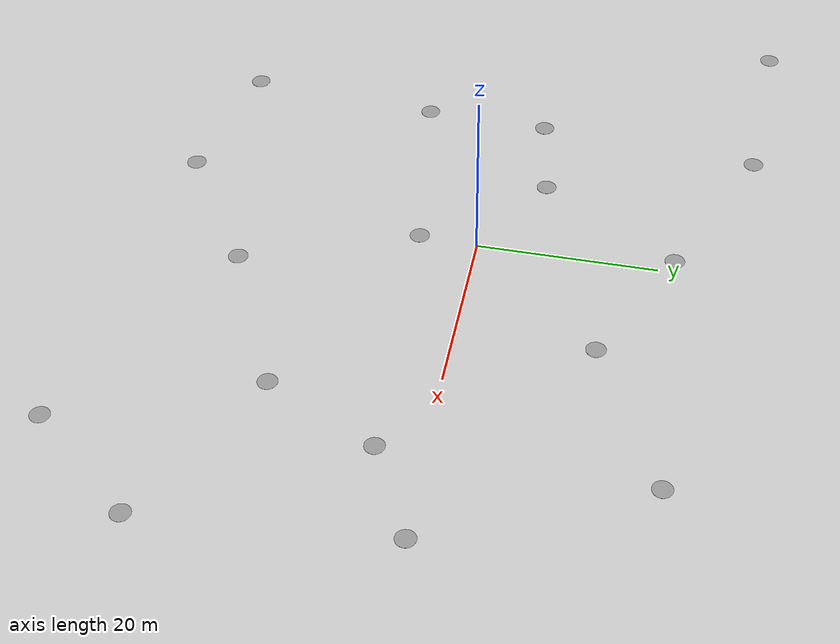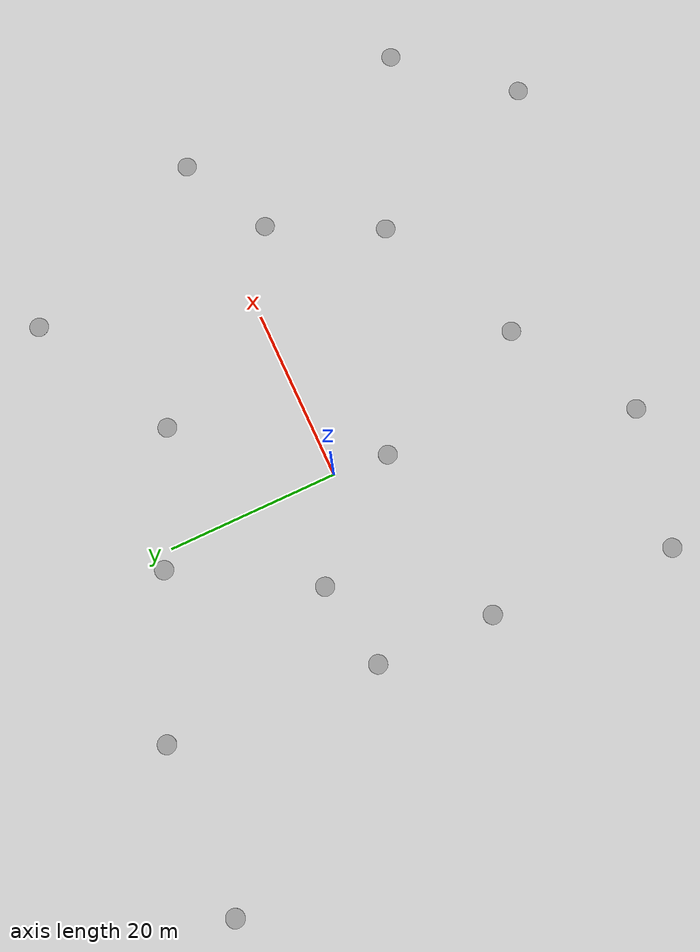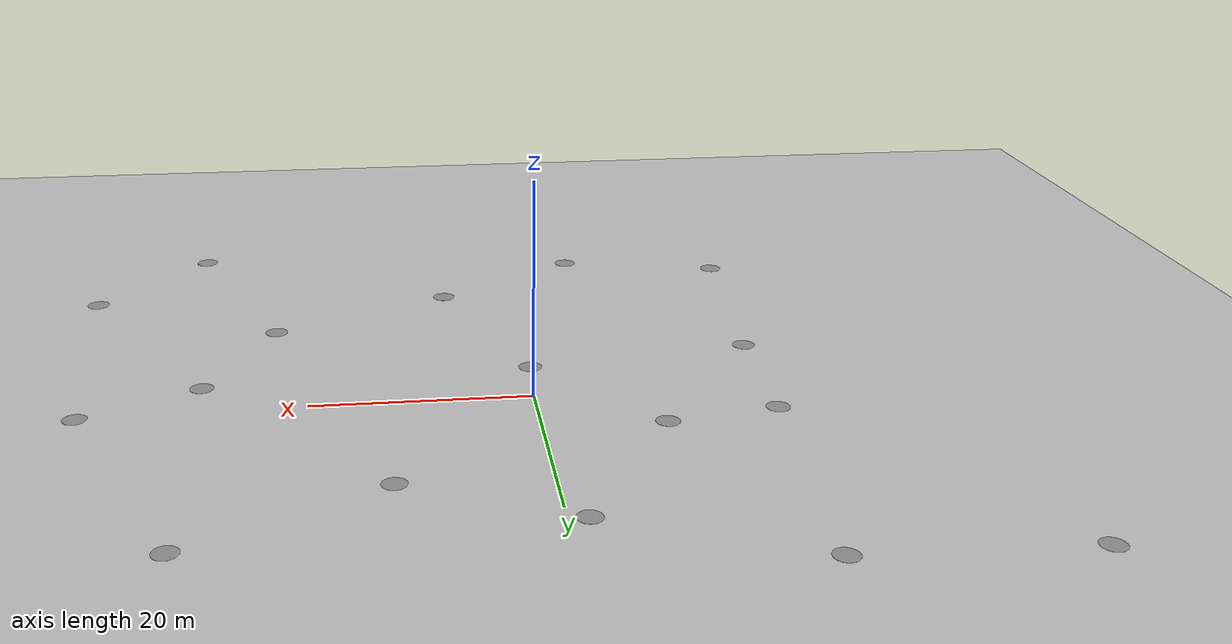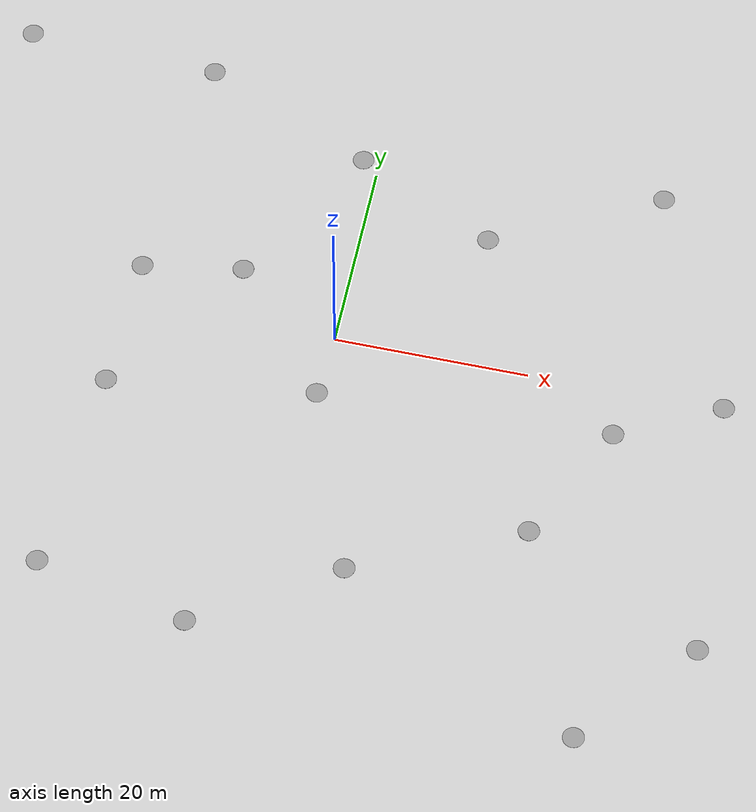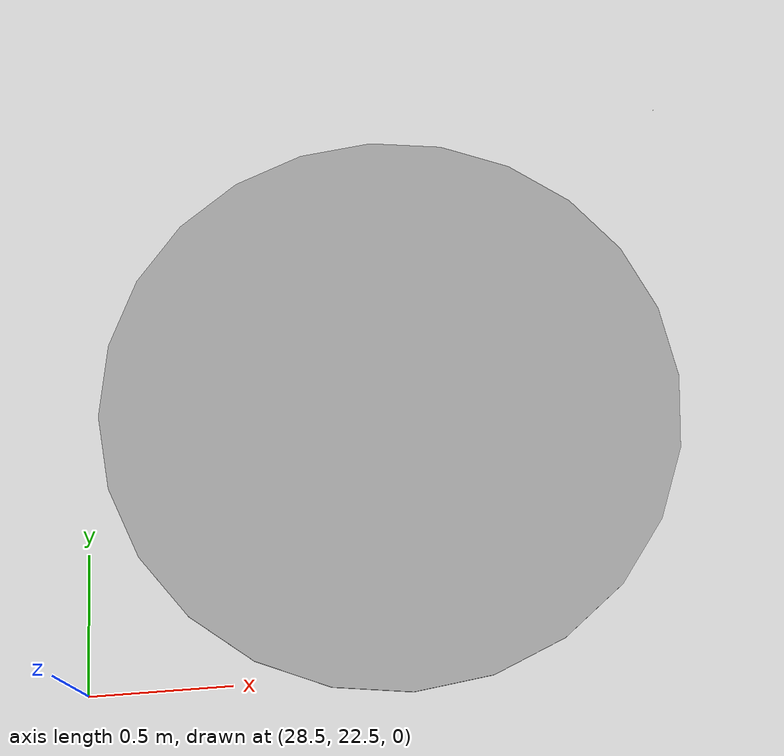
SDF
<sdf version="1.7">
 <world name="default">
  <light name="sun" type="directional">
   <pose>0 0 10 0 -0 0</pose>
   <diffuse>0.8 0.8 0.8 1</diffuse>
   <specular>0.2 0.2 0.2 1</specular>
   <attenuation>
    <range>1000</range>
    <constant>0.9</constant>
    <linear>0.01</linear>
    <quadratic>0.001</quadratic>
   </attenuation>
   <direction>-0.5 0.1 -0.9</direction>
   <spot><inner_angle>0</inner_angle><outer_angle>0</outer_angle><falloff>0</falloff></spot>
  </light>
  <gravity>0 0 -9.8</gravity>
  <magnetic_field>6e-06 2.3e-05 -4.2e-05</magnetic_field>
  <atmosphere type="adiabatic"/>
  <physics type="ode">
   <max_step_size>0.001</max_step_size>
   <real_time_factor>1</real_time_factor>
   <real_time_update_rate>1000</real_time_update_rate>
  </physics>
  <scene><ambient>0.4 0.4 0.4 1</ambient><background>0.7 0.7 0.7 1</background><shadows>1</shadows></scene>
  <spherical_coordinates>
   <surface_model>EARTH_WGS84</surface_model>
   <latitude_deg>0</latitude_deg>
   <longitude_deg>0</longitude_deg>
   <elevation>0</elevation>
   <heading_deg>0</heading_deg>
  </spherical_coordinates>
  <model name="greenplane">
   <static>1</static>
   <link name="link">
    <collision name="collision">
     <geometry><plane><normal>0 0 1</normal><size>100 100</size></plane></geometry>
     <surface><friction><ode><mu>100</mu><mu2>50</mu2></ode></friction></surface>
    </collision>
    <visual name="visual">
     <cast_shadows>0</cast_shadows>
     <geometry><plane><normal>0 0 1</normal><size>100 100</size></plane></geometry>
     <material>
      <script>
       <uri>/home/tamoghna/catkin_ws/src/vikram/models/green_plane/materials/scripts</uri>
       <uri>/home/tamoghna/catkin_ws/src/vikram/models/green_plane/materials/textures</uri>
       <name>MyModel/Image</name>
      </script>
     </material>
    </visual>
   </link>
  </model>
  <model name="pothole">
   <link name="link_0">
    <inertial>
     <mass>4.78965</mass>
     <inertia><ixx>1.43387</ixx><ixy>0</ixy><ixz>0</ixz><iyy>1.43387</iyy><iyz>0</iyz><izz>2.86765</izz></inertia>
    </inertial>
    <visual name="visual">
     <geometry><cylinder><radius>1.09427</radius><length>0.01</length></cylinder></geometry>
     <material>
      <lighting>1</lighting>
      <script><uri>file://media/materials/scripts/gazebo.material</uri><name>Gazebo/Grey</name></script>
      <shader type="pixel"><normal_map>__default__</normal_map></shader>
      <ambient>1 1 1 1</ambient>
      <diffuse>1 1 1 1</diffuse>
      <specular>1 1 1 1</specular>
      <emissive>1 1 1 1</emissive>
     </material>
    </visual>
    <collision name="collision">
     <geometry><cylinder><radius>1.09427</radius><length>0.01</length></cylinder></geometry>
     <surface>
      <friction>
       <ode><mu>1</mu><mu2>1</mu2><fdir1>0 0 0</fdir1><slip1>0</slip1><slip2>0</slip2></ode>
       <torsional>
        <coefficient>1</coefficient>
        <patch_radius>0</patch_radius>
        <surface_radius>0</surface_radius>
        <use_patch_radius>1</use_patch_radius>
        <ode><slip>0</slip></ode>
       </torsional>
      </friction>
      <bounce><restitution_coefficient>0</restitution_coefficient><threshold>1e+06</threshold></bounce>
      <contact>
       <collide_without_contact>0</collide_without_contact>
       <collide_without_contact_bitmask>1</collide_without_contact_bitmask>
       <collide_bitmask>1</collide_bitmask>
       <ode>
        <soft_cfm>0</soft_cfm>
        <soft_erp>0.2</soft_erp>
        <kp>1e+13</kp>
        <kd>1</kd>
        <max_vel>0.01</max_vel>
        <min_depth>0</min_depth>
       </ode>
       <bullet>
        <split_impulse>1</split_impulse>
        <split_impulse_penetration_threshold>-0.01</split_impulse_penetration_threshold>
        <soft_cfm>0</soft_cfm>
        <soft_erp>0.2</soft_erp>
        <kp>1e+13</kp>
        <kd>1</kd>
       </bullet>
      </contact>
     </surface>
    </collision>
   </link>
   <static>0</static>
   <pose>-0.450795 -6.48247 0.005 0 -0 0</pose>
  </model>
  <model name="pothole_clone">
   <link name="link_0">
    <inertial>
     <mass>4.78965</mass>
     <inertia><ixx>1.43387</ixx><ixy>0</ixy><ixz>0</ixz><iyy>1.43387</iyy><iyz>0</iyz><izz>2.86765</izz></inertia>
    </inertial>
    <visual name="visual">
     <geometry><cylinder><radius>1.09427</radius><length>0.01</length></cylinder></geometry>
     <material>
      <lighting>1</lighting>
      <script><uri>file://media/materials/scripts/gazebo.material</uri><name>Gazebo/Grey</name></script>
      <shader type="pixel"><normal_map>__default__</normal_map></shader>
      <ambient>1 1 1 1</ambient>
      <diffuse>1 1 1 1</diffuse>
      <specular>1 1 1 1</specular>
      <emissive>1 1 1 1</emissive>
     </material>
    </visual>
    <collision name="collision">
     <geometry><cylinder><radius>1.09427</radius><length>0.01</length></cylinder></geometry>
     <surface>
      <friction>
       <ode><mu>1</mu><mu2>1</mu2><fdir1>0 0 0</fdir1><slip1>0</slip1><slip2>0</slip2></ode>
       <torsional>
        <coefficient>1</coefficient>
        <patch_radius>0</patch_radius>
        <surface_radius>0</surface_radius>
        <use_patch_radius>1</use_patch_radius>
        <ode><slip>0</slip></ode>
       </torsional>
      </friction>
      <bounce><restitution_coefficient>0</restitution_coefficient><threshold>1e+06</threshold></bounce>
      <contact>
       <collide_without_contact>0</collide_without_contact>
       <collide_without_contact_bitmask>1</collide_without_contact_bitmask>
       <collide_bitmask>1</collide_bitmask>
       <ode>
        <soft_cfm>0</soft_cfm>
        <soft_erp>0.2</soft_erp>
        <kp>1e+13</kp>
        <kd>1</kd>
        <max_vel>0.01</max_vel>
        <min_depth>0</min_depth>
       </ode>
       <bullet>
        <split_impulse>1</split_impulse>
        <split_impulse_penetration_threshold>-0.01</split_impulse_penetration_threshold>
        <soft_cfm>0</soft_cfm>
        <soft_erp>0.2</soft_erp>
        <kp>1e+13</kp>
        <kd>1</kd>
       </bullet>
      </contact>
     </surface>
    </collision>
   </link>
   <static>0</static>
   <pose>-10.9635 6.12866 0.005 0 -0 0</pose>
  </model>
  <model name="pothole_clone_0">
   <link name="link_0">
    <inertial>
     <mass>4.78965</mass>
     <inertia><ixx>1.43387</ixx><ixy>0</ixy><ixz>0</ixz><iyy>1.43387</iyy><iyz>0</iyz><izz>2.86765</izz></inertia>
    </inertial>
    <visual name="visual">
     <geometry><cylinder><radius>1.09427</radius><length>0.01</length></cylinder></geometry>
     <material>
      <lighting>1</lighting>
      <script><uri>file://media/materials/scripts/gazebo.material</uri><name>Gazebo/Grey</name></script>
      <shader type="pixel"><normal_map>__default__</normal_map></shader>
      <ambient>1 1 1 1</ambient>
      <diffuse>1 1 1 1</diffuse>
      <specular>1 1 1 1</specular>
      <emissive>1 1 1 1</emissive>
     </material>
    </visual>
    <collision name="collision">
     <geometry><cylinder><radius>1.09427</radius><length>0.01</length></cylinder></geometry>
     <surface>
      <friction>
       <ode><mu>1</mu><mu2>1</mu2><fdir1>0 0 0</fdir1><slip1>0</slip1><slip2>0</slip2></ode>
       <torsional>
        <coefficient>1</coefficient>
        <patch_radius>0</patch_radius>
        <surface_radius>0</surface_radius>
        <use_patch_radius>1</use_patch_radius>
        <ode><slip>0</slip></ode>
       </torsional>
      </friction>
      <bounce><restitution_coefficient>0</restitution_coefficient><threshold>1e+06</threshold></bounce>
      <contact>
       <collide_without_contact>0</collide_without_contact>
       <collide_without_contact_bitmask>1</collide_without_contact_bitmask>
       <collide_bitmask>1</collide_bitmask>
       <ode>
        <soft_cfm>0</soft_cfm>
        <soft_erp>0.2</soft_erp>
        <kp>1e+13</kp>
        <kd>1</kd>
        <max_vel>0.01</max_vel>
        <min_depth>0</min_depth>
       </ode>
       <bullet>
        <split_impulse>1</split_impulse>
        <split_impulse_penetration_threshold>-0.01</split_impulse_penetration_threshold>
        <soft_cfm>0</soft_cfm>
        <soft_erp>0.2</soft_erp>
        <kp>1e+13</kp>
        <kd>1</kd>
       </bullet>
      </contact>
     </surface>
    </collision>
   </link>
   <static>0</static>
   <pose>12.8185 14.8872 0.005 0 -0 0</pose>
  </model>
  <model name="pothole_clone_1">
   <link name="link_0">
    <inertial>
     <mass>4.78965</mass>
     <inertia><ixx>1.43387</ixx><ixy>0</ixy><ixz>0</ixz><iyy>1.43387</iyy><iyz>0</iyz><izz>2.86765</izz></inertia>
    </inertial>
    <visual name="visual">
     <geometry><cylinder><radius>1.09427</radius><length>0.01</length></cylinder></geometry>
     <material>
      <lighting>1</lighting>
      <script><uri>file://media/materials/scripts/gazebo.material</uri><name>Gazebo/Grey</name></script>
      <shader type="pixel"><normal_map>__default__</normal_map></shader>
      <ambient>1 1 1 1</ambient>
      <diffuse>1 1 1 1</diffuse>
      <specular>1 1 1 1</specular>
      <emissive>1 1 1 1</emissive>
     </material>
    </visual>
    <collision name="collision">
     <geometry><cylinder><radius>1.09427</radius><length>0.01</length></cylinder></geometry>
     <surface>
      <friction>
       <ode><mu>1</mu><mu2>1</mu2><fdir1>0 0 0</fdir1><slip1>0</slip1><slip2>0</slip2></ode>
       <torsional>
        <coefficient>1</coefficient>
        <patch_radius>0</patch_radius>
        <surface_radius>0</surface_radius>
        <use_patch_radius>1</use_patch_radius>
        <ode><slip>0</slip></ode>
       </torsional>
      </friction>
      <bounce><restitution_coefficient>0</restitution_coefficient><threshold>1e+06</threshold></bounce>
      <contact>
       <collide_without_contact>0</collide_without_contact>
       <collide_without_contact_bitmask>1</collide_without_contact_bitmask>
       <collide_bitmask>1</collide_bitmask>
       <ode>
        <soft_cfm>0</soft_cfm>
        <soft_erp>0.2</soft_erp>
        <kp>1e+13</kp>
        <kd>1</kd>
        <max_vel>0.01</max_vel>
        <min_depth>0</min_depth>
       </ode>
       <bullet>
        <split_impulse>1</split_impulse>
        <split_impulse_penetration_threshold>-0.01</split_impulse_penetration_threshold>
        <soft_cfm>0</soft_cfm>
        <soft_erp>0.2</soft_erp>
        <kp>1e+13</kp>
        <kd>1</kd>
       </bullet>
      </contact>
     </surface>
    </collision>
   </link>
   <static>0</static>
   <pose>-21.6093 -9.48091 0.005 0 -0 0</pose>
  </model>
  <model name="pothole_clone_2">
   <link name="link_0">
    <inertial>
     <mass>4.78965</mass>
     <inertia><ixx>1.43387</ixx><ixy>0</ixy><ixz>0</ixz><iyy>1.43387</iyy><iyz>0</iyz><izz>2.86765</izz></inertia>
    </inertial>
    <visual name="visual">
     <geometry><cylinder><radius>1.09427</radius><length>0.01</length></cylinder></geometry>
     <material>
      <lighting>1</lighting>
      <script><uri>file://media/materials/scripts/gazebo.material</uri><name>Gazebo/Grey</name></script>
      <shader type="pixel"><normal_map>__default__</normal_map></shader>
      <ambient>1 1 1 1</ambient>
      <diffuse>1 1 1 1</diffuse>
      <specular>1 1 1 1</specular>
      <emissive>1 1 1 1</emissive>
     </material>
    </visual>
    <collision name="collision">
     <geometry><cylinder><radius>1.09427</radius><length>0.01</length></cylinder></geometry>
     <surface>
      <friction>
       <ode><mu>1</mu><mu2>1</mu2><fdir1>0 0 0</fdir1><slip1>0</slip1><slip2>0</slip2></ode>
       <torsional>
        <coefficient>1</coefficient>
        <patch_radius>0</patch_radius>
        <surface_radius>0</surface_radius>
        <use_patch_radius>1</use_patch_radius>
        <ode><slip>0</slip></ode>
       </torsional>
      </friction>
      <bounce><restitution_coefficient>0</restitution_coefficient><threshold>1e+06</threshold></bounce>
      <contact>
       <collide_without_contact>0</collide_without_contact>
       <collide_without_contact_bitmask>1</collide_without_contact_bitmask>
       <collide_bitmask>1</collide_bitmask>
       <ode>
        <soft_cfm>0</soft_cfm>
        <soft_erp>0.2</soft_erp>
        <kp>1e+13</kp>
        <kd>1</kd>
        <max_vel>0.01</max_vel>
        <min_depth>0</min_depth>
       </ode>
       <bullet>
        <split_impulse>1</split_impulse>
        <split_impulse_penetration_threshold>-0.01</split_impulse_penetration_threshold>
        <soft_cfm>0</soft_cfm>
        <soft_erp>0.2</soft_erp>
        <kp>1e+13</kp>
        <kd>1</kd>
       </bullet>
      </contact>
     </surface>
    </collision>
   </link>
   <static>0</static>
   <pose>6.53571 -25.3494 0.005 0 -0 0</pose>
  </model>
  <model name="pothole_clone_3">
   <link name="link_0">
    <inertial>
     <mass>4.78965</mass>
     <inertia><ixx>1.43387</ixx><ixy>0</ixy><ixz>0</ixz><iyy>1.43387</iyy><iyz>0</iyz><izz>2.86765</izz></inertia>
    </inertial>
    <visual name="visual">
     <geometry><cylinder><radius>1.09427</radius><length>0.01</length></cylinder></geometry>
     <material>
      <lighting>1</lighting>
      <script><uri>file://media/materials/scripts/gazebo.material</uri><name>Gazebo/Grey</name></script>
      <shader type="pixel"><normal_map>__default__</normal_map></shader>
      <ambient>1 1 1 1</ambient>
      <diffuse>1 1 1 1</diffuse>
      <specular>1 1 1 1</specular>
      <emissive>1 1 1 1</emissive>
     </material>
    </visual>
    <collision name="collision">
     <geometry><cylinder><radius>1.09427</radius><length>0.01</length></cylinder></geometry>
     <surface>
      <friction>
       <ode><mu>1</mu><mu2>1</mu2><fdir1>0 0 0</fdir1><slip1>0</slip1><slip2>0</slip2></ode>
       <torsional>
        <coefficient>1</coefficient>
        <patch_radius>0</patch_radius>
        <surface_radius>0</surface_radius>
        <use_patch_radius>1</use_patch_radius>
        <ode><slip>0</slip></ode>
       </torsional>
      </friction>
      <bounce><restitution_coefficient>0</restitution_coefficient><threshold>1e+06</threshold></bounce>
      <contact>
       <collide_without_contact>0</collide_without_contact>
       <collide_without_contact_bitmask>1</collide_without_contact_bitmask>
       <collide_bitmask>1</collide_bitmask>
       <ode>
        <soft_cfm>0</soft_cfm>
        <soft_erp>0.2</soft_erp>
        <kp>1e+13</kp>
        <kd>1</kd>
        <max_vel>0.01</max_vel>
        <min_depth>0</min_depth>
       </ode>
       <bullet>
        <split_impulse>1</split_impulse>
        <split_impulse_penetration_threshold>-0.01</split_impulse_penetration_threshold>
        <soft_cfm>0</soft_cfm>
        <soft_erp>0.2</soft_erp>
        <kp>1e+13</kp>
        <kd>1</kd>
       </bullet>
      </contact>
     </surface>
    </collision>
   </link>
   <static>0</static>
   <pose>-21.1845 4.36156 0.005 0 -0 0</pose>
  </model>
  <model name="pothole_clone_4">
   <link name="link_0">
    <inertial>
     <mass>4.78965</mass>
     <inertia><ixx>1.43387</ixx><ixy>0</ixy><ixz>0</ixz><iyy>1.43387</iyy><iyz>0</iyz><izz>2.86765</izz></inertia>
    </inertial>
    <visual name="visual">
     <geometry><cylinder><radius>1.09427</radius><length>0.01</length></cylinder></geometry>
     <material>
      <lighting>1</lighting>
      <script><uri>file://media/materials/scripts/gazebo.material</uri><name>Gazebo/Grey</name></script>
      <shader type="pixel"><normal_map>__default__</normal_map></shader>
      <ambient>1 1 1 1</ambient>
      <diffuse>1 1 1 1</diffuse>
      <specular>1 1 1 1</specular>
      <emissive>1 1 1 1</emissive>
     </material>
    </visual>
    <collision name="collision">
     <geometry><cylinder><radius>1.09427</radius><length>0.01</length></cylinder></geometry>
     <surface>
      <friction>
       <ode><mu>1</mu><mu2>1</mu2><fdir1>0 0 0</fdir1><slip1>0</slip1><slip2>0</slip2></ode>
       <torsional>
        <coefficient>1</coefficient>
        <patch_radius>0</patch_radius>
        <surface_radius>0</surface_radius>
        <use_patch_radius>1</use_patch_radius>
        <ode><slip>0</slip></ode>
       </torsional>
      </friction>
      <bounce><restitution_coefficient>0</restitution_coefficient><threshold>1e+06</threshold></bounce>
      <contact>
       <collide_without_contact>0</collide_without_contact>
       <collide_without_contact_bitmask>1</collide_without_contact_bitmask>
       <collide_bitmask>1</collide_bitmask>
       <ode>
        <soft_cfm>0</soft_cfm>
        <soft_erp>0.2</soft_erp>
        <kp>1e+13</kp>
        <kd>1</kd>
        <max_vel>0.01</max_vel>
        <min_depth>0</min_depth>
       </ode>
       <bullet>
        <split_impulse>1</split_impulse>
        <split_impulse_penetration_threshold>-0.01</split_impulse_penetration_threshold>
        <soft_cfm>0</soft_cfm>
        <soft_erp>0.2</soft_erp>
        <kp>1e+13</kp>
        <kd>1</kd>
       </bullet>
      </contact>
     </surface>
    </collision>
   </link>
   <static>0</static>
   <pose>23.5458 -17.4169 0.005 0 -0 0</pose>
  </model>
  <model name="pothole_clone_5">
   <link name="link_0">
    <inertial>
     <mass>4.78965</mass>
     <inertia><ixx>1.43387</ixx><ixy>0</ixy><ixz>0</ixz><iyy>1.43387</iyy><iyz>0</iyz><izz>2.86765</izz></inertia>
    </inertial>
    <visual name="visual">
     <geometry><cylinder><radius>1.09427</radius><length>0.01</length></cylinder></geometry>
     <material>
      <lighting>1</lighting>
      <script><uri>file://media/materials/scripts/gazebo.material</uri><name>Gazebo/Grey</name></script>
      <shader type="pixel"><normal_map>__default__</normal_map></shader>
      <ambient>1 1 1 1</ambient>
      <diffuse>1 1 1 1</diffuse>
      <specular>1 1 1 1</specular>
      <emissive>1 1 1 1</emissive>
     </material>
    </visual>
    <collision name="collision">
     <geometry><cylinder><radius>1.09427</radius><length>0.01</length></cylinder></geometry>
     <surface>
      <friction>
       <ode><mu>1</mu><mu2>1</mu2><fdir1>0 0 0</fdir1><slip1>0</slip1><slip2>0</slip2></ode>
       <torsional>
        <coefficient>1</coefficient>
        <patch_radius>0</patch_radius>
        <surface_radius>0</surface_radius>
        <use_patch_radius>1</use_patch_radius>
        <ode><slip>0</slip></ode>
       </torsional>
      </friction>
      <bounce><restitution_coefficient>0</restitution_coefficient><threshold>1e+06</threshold></bounce>
      <contact>
       <collide_without_contact>0</collide_without_contact>
       <collide_without_contact_bitmask>1</collide_without_contact_bitmask>
       <collide_bitmask>1</collide_bitmask>
       <ode>
        <soft_cfm>0</soft_cfm>
        <soft_erp>0.2</soft_erp>
        <kp>1e+13</kp>
        <kd>1</kd>
        <max_vel>0.01</max_vel>
        <min_depth>0</min_depth>
       </ode>
       <bullet>
        <split_impulse>1</split_impulse>
        <split_impulse_penetration_threshold>-0.01</split_impulse_penetration_threshold>
        <soft_cfm>0</soft_cfm>
        <soft_erp>0.2</soft_erp>
        <kp>1e+13</kp>
        <kd>1</kd>
       </bullet>
      </contact>
     </surface>
    </collision>
   </link>
   <static>0</static>
   <pose>-23.3218 -30.9269 0.005 0 -0 0</pose>
  </model>
  <model name="pothole_clone_6">
   <link name="link_0">
    <inertial>
     <mass>4.78965</mass>
     <inertia><ixx>1.43387</ixx><ixy>0</ixy><ixz>0</ixz><iyy>1.43387</iyy><iyz>0</iyz><izz>2.86765</izz></inertia>
    </inertial>
    <visual name="visual">
     <geometry><cylinder><radius>1.09427</radius><length>0.01</length></cylinder></geometry>
     <material>
      <lighting>1</lighting>
      <script><uri>file://media/materials/scripts/gazebo.material</uri><name>Gazebo/Grey</name></script>
      <shader type="pixel"><normal_map>__default__</normal_map></shader>
      <ambient>1 1 1 1</ambient>
      <diffuse>1 1 1 1</diffuse>
      <specular>1 1 1 1</specular>
      <emissive>1 1 1 1</emissive>
     </material>
    </visual>
    <collision name="collision">
     <geometry><cylinder><radius>1.09427</radius><length>0.01</length></cylinder></geometry>
     <surface>
      <friction>
       <ode><mu>1</mu><mu2>1</mu2><fdir1>0 0 0</fdir1><slip1>0</slip1><slip2>0</slip2></ode>
       <torsional>
        <coefficient>1</coefficient>
        <patch_radius>0</patch_radius>
        <surface_radius>0</surface_radius>
        <use_patch_radius>1</use_patch_radius>
        <ode><slip>0</slip></ode>
       </torsional>
      </friction>
      <bounce><restitution_coefficient>0</restitution_coefficient><threshold>1e+06</threshold></bounce>
      <contact>
       <collide_without_contact>0</collide_without_contact>
       <collide_without_contact_bitmask>1</collide_without_contact_bitmask>
       <collide_bitmask>1</collide_bitmask>
       <ode>
        <soft_cfm>0</soft_cfm>
        <soft_erp>0.2</soft_erp>
        <kp>1e+13</kp>
        <kd>1</kd>
        <max_vel>0.01</max_vel>
        <min_depth>0</min_depth>
       </ode>
       <bullet>
        <split_impulse>1</split_impulse>
        <split_impulse_penetration_threshold>-0.01</split_impulse_penetration_threshold>
        <soft_cfm>0</soft_cfm>
        <soft_erp>0.2</soft_erp>
        <kp>1e+13</kp>
        <kd>1</kd>
       </bullet>
      </contact>
     </surface>
    </collision>
   </link>
   <static>0</static>
   <pose>-7.52985 -34.3069 0.005 0 -0 0</pose>
  </model>
  <model name="pothole_clone_7">
   <link name="link_0">
    <inertial>
     <mass>4.78965</mass>
     <inertia><ixx>1.43387</ixx><ixy>0</ixy><ixz>0</ixz><iyy>1.43387</iyy><iyz>0</iyz><izz>2.86765</izz></inertia>
    </inertial>
    <visual name="visual">
     <geometry><cylinder><radius>1.09427</radius><length>0.01</length></cylinder></geometry>
     <material>
      <lighting>1</lighting>
      <script><uri>file://media/materials/scripts/gazebo.material</uri><name>Gazebo/Grey</name></script>
      <shader type="pixel"><normal_map>__default__</normal_map></shader>
      <ambient>1 1 1 1</ambient>
      <diffuse>1 1 1 1</diffuse>
      <specular>1 1 1 1</specular>
      <emissive>1 1 1 1</emissive>
     </material>
    </visual>
    <collision name="collision">
     <geometry><cylinder><radius>1.09427</radius><length>0.01</length></cylinder></geometry>
     <surface>
      <friction>
       <ode><mu>1</mu><mu2>1</mu2><fdir1>0 0 0</fdir1><slip1>0</slip1><slip2>0</slip2></ode>
       <torsional>
        <coefficient>1</coefficient>
        <patch_radius>0</patch_radius>
        <surface_radius>0</surface_radius>
        <use_patch_radius>1</use_patch_radius>
        <ode><slip>0</slip></ode>
       </torsional>
      </friction>
      <bounce><restitution_coefficient>0</restitution_coefficient><threshold>1e+06</threshold></bounce>
      <contact>
       <collide_without_contact>0</collide_without_contact>
       <collide_without_contact_bitmask>1</collide_without_contact_bitmask>
       <collide_bitmask>1</collide_bitmask>
       <ode>
        <soft_cfm>0</soft_cfm>
        <soft_erp>0.2</soft_erp>
        <kp>1e+13</kp>
        <kd>1</kd>
        <max_vel>0.01</max_vel>
        <min_depth>0</min_depth>
       </ode>
       <bullet>
        <split_impulse>1</split_impulse>
        <split_impulse_penetration_threshold>-0.01</split_impulse_penetration_threshold>
        <soft_cfm>0</soft_cfm>
        <soft_erp>0.2</soft_erp>
        <kp>1e+13</kp>
        <kd>1</kd>
       </bullet>
      </contact>
     </surface>
    </collision>
   </link>
   <static>0</static>
   <pose>-19.3615 29.0423 0.005 0 -0 0</pose>
  </model>
  <model name="pothole_clone_8">
   <link name="link_0">
    <inertial>
     <mass>4.78965</mass>
     <inertia><ixx>1.43387</ixx><ixy>0</ixy><ixz>0</ixz><iyy>1.43387</iyy><iyz>0</iyz><izz>2.86765</izz></inertia>
    </inertial>
    <visual name="visual">
     <geometry><cylinder><radius>1.09427</radius><length>0.01</length></cylinder></geometry>
     <material>
      <lighting>1</lighting>
      <script><uri>file://media/materials/scripts/gazebo.material</uri><name>Gazebo/Grey</name></script>
      <shader type="pixel"><normal_map>__default__</normal_map></shader>
      <ambient>1 1 1 1</ambient>
      <diffuse>1 1 1 1</diffuse>
      <specular>1 1 1 1</specular>
      <emissive>1 1 1 1</emissive>
     </material>
    </visual>
    <collision name="collision">
     <geometry><cylinder><radius>1.09427</radius><length>0.01</length></cylinder></geometry>
     <surface>
      <friction>
       <ode><mu>1</mu><mu2>1</mu2><fdir1>0 0 0</fdir1><slip1>0</slip1><slip2>0</slip2></ode>
       <torsional>
        <coefficient>1</coefficient>
        <patch_radius>0</patch_radius>
        <surface_radius>0</surface_radius>
        <use_patch_radius>1</use_patch_radius>
        <ode><slip>0</slip></ode>
       </torsional>
      </friction>
      <bounce><restitution_coefficient>0</restitution_coefficient><threshold>1e+06</threshold></bounce>
      <contact>
       <collide_without_contact>0</collide_without_contact>
       <collide_without_contact_bitmask>1</collide_without_contact_bitmask>
       <collide_bitmask>1</collide_bitmask>
       <ode>
        <soft_cfm>0</soft_cfm>
        <soft_erp>0.2</soft_erp>
        <kp>1e+13</kp>
        <kd>1</kd>
        <max_vel>0.01</max_vel>
        <min_depth>0</min_depth>
       </ode>
       <bullet>
        <split_impulse>1</split_impulse>
        <split_impulse_penetration_threshold>-0.01</split_impulse_penetration_threshold>
        <soft_cfm>0</soft_cfm>
        <soft_erp>0.2</soft_erp>
        <kp>1e+13</kp>
        <kd>1</kd>
       </bullet>
      </contact>
     </surface>
    </collision>
   </link>
   <static>0</static>
   <pose>29.6658 -4.85936 0.005 0 -0 0</pose>
  </model>
  <model name="pothole_clone_9">
   <link name="link_0">
    <inertial>
     <mass>4.78965</mass>
     <inertia><ixx>1.43387</ixx><ixy>0</ixy><ixz>0</ixz><iyy>1.43387</iyy><iyz>0</iyz><izz>2.86765</izz></inertia>
    </inertial>
    <visual name="visual">
     <geometry><cylinder><radius>1.09427</radius><length>0.01</length></cylinder></geometry>
     <material>
      <lighting>1</lighting>
      <script><uri>file://media/materials/scripts/gazebo.material</uri><name>Gazebo/Grey</name></script>
      <shader type="pixel"><normal_map>__default__</normal_map></shader>
      <ambient>1 1 1 1</ambient>
      <diffuse>1 1 1 1</diffuse>
      <specular>1 1 1 1</specular>
      <emissive>1 1 1 1</emissive>
     </material>
    </visual>
    <collision name="collision">
     <geometry><cylinder><radius>1.09427</radius><length>0.01</length></cylinder></geometry>
     <surface>
      <friction>
       <ode><mu>1</mu><mu2>1</mu2><fdir1>0 0 0</fdir1><slip1>0</slip1><slip2>0</slip2></ode>
       <torsional>
        <coefficient>1</coefficient>
        <patch_radius>0</patch_radius>
        <surface_radius>0</surface_radius>
        <use_patch_radius>1</use_patch_radius>
        <ode><slip>0</slip></ode>
       </torsional>
      </friction>
      <bounce><restitution_coefficient>0</restitution_coefficient><threshold>1e+06</threshold></bounce>
      <contact>
       <collide_without_contact>0</collide_without_contact>
       <collide_without_contact_bitmask>1</collide_without_contact_bitmask>
       <collide_bitmask>1</collide_bitmask>
       <ode>
        <soft_cfm>0</soft_cfm>
        <soft_erp>0.2</soft_erp>
        <kp>1e+13</kp>
        <kd>1</kd>
        <max_vel>0.01</max_vel>
        <min_depth>0</min_depth>
       </ode>
       <bullet>
        <split_impulse>1</split_impulse>
        <split_impulse_penetration_threshold>-0.01</split_impulse_penetration_threshold>
        <soft_cfm>0</soft_cfm>
        <soft_erp>0.2</soft_erp>
        <kp>1e+13</kp>
        <kd>1</kd>
       </bullet>
      </contact>
     </surface>
    </collision>
   </link>
   <static>0</static>
   <pose>29.6241 23.5249 0.005 0 -0 0</pose>
  </model>
  <model name="pothole_clone_10">
   <link name="link_0">
    <inertial>
     <mass>4.78965</mass>
     <inertia><ixx>1.43387</ixx><ixy>0</ixy><ixz>0</ixz><iyy>1.43387</iyy><iyz>0</iyz><izz>2.86765</izz></inertia>
    </inertial>
    <visual name="visual">
     <geometry><cylinder><radius>1.09427</radius><length>0.01</length></cylinder></geometry>
     <material>
      <lighting>1</lighting>
      <script><uri>file://media/materials/scripts/gazebo.material</uri><name>Gazebo/Grey</name></script>
      <shader type="pixel"><normal_map>__default__</normal_map></shader>
      <ambient>1 1 1 1</ambient>
      <diffuse>1 1 1 1</diffuse>
      <specular>1 1 1 1</specular>
      <emissive>1 1 1 1</emissive>
     </material>
    </visual>
    <collision name="collision">
     <geometry><cylinder><radius>1.09427</radius><length>0.01</length></cylinder></geometry>
     <surface>
      <friction>
       <ode><mu>1</mu><mu2>1</mu2><fdir1>0 0 0</fdir1><slip1>0</slip1><slip2>0</slip2></ode>
       <torsional>
        <coefficient>1</coefficient>
        <patch_radius>0</patch_radius>
        <surface_radius>0</surface_radius>
        <use_patch_radius>1</use_patch_radius>
        <ode><slip>0</slip></ode>
       </torsional>
      </friction>
      <bounce><restitution_coefficient>0</restitution_coefficient><threshold>1e+06</threshold></bounce>
      <contact>
       <collide_without_contact>0</collide_without_contact>
       <collide_without_contact_bitmask>1</collide_without_contact_bitmask>
       <collide_bitmask>1</collide_bitmask>
       <ode>
        <soft_cfm>0</soft_cfm>
        <soft_erp>0.2</soft_erp>
        <kp>1e+13</kp>
        <kd>1</kd>
        <max_vel>0.01</max_vel>
        <min_depth>0</min_depth>
       </ode>
       <bullet>
        <split_impulse>1</split_impulse>
        <split_impulse_penetration_threshold>-0.01</split_impulse_penetration_threshold>
        <soft_cfm>0</soft_cfm>
        <soft_erp>0.2</soft_erp>
        <kp>1e+13</kp>
        <kd>1</kd>
       </bullet>
      </contact>
     </surface>
    </collision>
   </link>
   <static>0</static>
   <pose>40.0003 0.439302 0.005 0 -0 0</pose>
  </model>
  <model name="pothole_clone_11">
   <link name="link_0">
    <inertial>
     <mass>4.78965</mass>
     <inertia><ixx>1.43387</ixx><ixy>0</ixy><ixz>0</ixz><iyy>1.43387</iyy><iyz>0</iyz><izz>2.86765</izz></inertia>
    </inertial>
    <visual name="visual">
     <geometry><cylinder><radius>1.09427</radius><length>0.01</length></cylinder></geometry>
     <material>
      <lighting>1</lighting>
      <script><uri>file://media/materials/scripts/gazebo.material</uri><name>Gazebo/Grey</name></script>
      <shader type="pixel"><normal_map>__default__</normal_map></shader>
      <ambient>1 1 1 1</ambient>
      <diffuse>1 1 1 1</diffuse>
      <specular>1 1 1 1</specular>
      <emissive>1 1 1 1</emissive>
     </material>
    </visual>
    <collision name="collision">
     <geometry><cylinder><radius>1.09427</radius><length>0.01</length></cylinder></geometry>
     <surface>
      <friction>
       <ode><mu>1</mu><mu2>1</mu2><fdir1>0 0 0</fdir1><slip1>0</slip1><slip2>0</slip2></ode>
       <torsional>
        <coefficient>1</coefficient>
        <patch_radius>0</patch_radius>
        <surface_radius>0</surface_radius>
        <use_patch_radius>1</use_patch_radius>
        <ode><slip>0</slip></ode>
       </torsional>
      </friction>
      <bounce><restitution_coefficient>0</restitution_coefficient><threshold>1e+06</threshold></bounce>
      <contact>
       <collide_without_contact>0</collide_without_contact>
       <collide_without_contact_bitmask>1</collide_without_contact_bitmask>
       <collide_bitmask>1</collide_bitmask>
       <ode>
        <soft_cfm>0</soft_cfm>
        <soft_erp>0.2</soft_erp>
        <kp>1e+13</kp>
        <kd>1</kd>
        <max_vel>0.01</max_vel>
        <min_depth>0</min_depth>
       </ode>
       <bullet>
        <split_impulse>1</split_impulse>
        <split_impulse_penetration_threshold>-0.01</split_impulse_penetration_threshold>
        <soft_cfm>0</soft_cfm>
        <soft_erp>0.2</soft_erp>
        <kp>1e+13</kp>
        <kd>1</kd>
       </bullet>
      </contact>
     </surface>
    </collision>
   </link>
   <static>0</static>
   <pose>32.182 -38.6389 0.005 0 -0 0</pose>
  </model>
  <model name="pothole_clone_12">
   <link name="link_0">
    <inertial>
     <mass>4.78965</mass>
     <inertia><ixx>1.43387</ixx><ixy>0</ixy><ixz>0</ixz><iyy>1.43387</iyy><iyz>0</iyz><izz>2.86765</izz></inertia>
    </inertial>
    <visual name="visual">
     <geometry><cylinder><radius>1.09427</radius><length>0.01</length></cylinder></geometry>
     <material>
      <lighting>1</lighting>
      <script><uri>file://media/materials/scripts/gazebo.material</uri><name>Gazebo/Grey</name></script>
      <shader type="pixel"><normal_map>__default__</normal_map></shader>
      <ambient>1 1 1 1</ambient>
      <diffuse>1 1 1 1</diffuse>
      <specular>1 1 1 1</specular>
      <emissive>1 1 1 1</emissive>
     </material>
    </visual>
    <collision name="collision">
     <geometry><cylinder><radius>1.09427</radius><length>0.01</length></cylinder></geometry>
     <surface>
      <friction>
       <ode><mu>1</mu><mu2>1</mu2><fdir1>0 0 0</fdir1><slip1>0</slip1><slip2>0</slip2></ode>
       <torsional>
        <coefficient>1</coefficient>
        <patch_radius>0</patch_radius>
        <surface_radius>0</surface_radius>
        <use_patch_radius>1</use_patch_radius>
        <ode><slip>0</slip></ode>
       </torsional>
      </friction>
      <bounce><restitution_coefficient>0</restitution_coefficient><threshold>1e+06</threshold></bounce>
      <contact>
       <collide_without_contact>0</collide_without_contact>
       <collide_without_contact_bitmask>1</collide_without_contact_bitmask>
       <collide_bitmask>1</collide_bitmask>
       <ode>
        <soft_cfm>0</soft_cfm>
        <soft_erp>0.2</soft_erp>
        <kp>1e+13</kp>
        <kd>1</kd>
        <max_vel>0.01</max_vel>
        <min_depth>0</min_depth>
       </ode>
       <bullet>
        <split_impulse>1</split_impulse>
        <split_impulse_penetration_threshold>-0.01</split_impulse_penetration_threshold>
        <soft_cfm>0</soft_cfm>
        <soft_erp>0.2</soft_erp>
        <kp>1e+13</kp>
        <kd>1</kd>
       </bullet>
      </contact>
     </surface>
    </collision>
   </link>
   <static>0</static>
   <pose>42.2384 -26.804 0.005 0 -0 0</pose>
  </model>
  <model name="pothole_clone_13">
   <link name="link_0">
    <inertial>
     <mass>4.78965</mass>
     <inertia><ixx>1.43387</ixx><ixy>0</ixy><ixz>0</ixz><iyy>1.43387</iyy><iyz>0</iyz><izz>2.86765</izz></inertia>
    </inertial>
    <visual name="visual">
     <geometry><cylinder><radius>1.09427</radius><length>0.01</length></cylinder></geometry>
     <material>
      <lighting>1</lighting>
      <script><uri>file://media/materials/scripts/gazebo.material</uri><name>Gazebo/Grey</name></script>
      <shader type="pixel"><normal_map>__default__</normal_map></shader>
      <ambient>1 1 1 1</ambient>
      <diffuse>1 1 1 1</diffuse>
      <specular>1 1 1 1</specular>
      <emissive>1 1 1 1</emissive>
     </material>
    </visual>
    <collision name="collision">
     <geometry><cylinder><radius>1.09427</radius><length>0.01</length></cylinder></geometry>
     <surface>
      <friction>
       <ode><mu>1</mu><mu2>1</mu2><fdir1>0 0 0</fdir1><slip1>0</slip1><slip2>0</slip2></ode>
       <torsional>
        <coefficient>1</coefficient>
        <patch_radius>0</patch_radius>
        <surface_radius>0</surface_radius>
        <use_patch_radius>1</use_patch_radius>
        <ode><slip>0</slip></ode>
       </torsional>
      </friction>
      <bounce><restitution_coefficient>0</restitution_coefficient><threshold>1e+06</threshold></bounce>
      <contact>
       <collide_without_contact>0</collide_without_contact>
       <collide_without_contact_bitmask>1</collide_without_contact_bitmask>
       <collide_bitmask>1</collide_bitmask>
       <ode>
        <soft_cfm>0</soft_cfm>
        <soft_erp>0.2</soft_erp>
        <kp>1e+13</kp>
        <kd>1</kd>
        <max_vel>0.01</max_vel>
        <min_depth>0</min_depth>
       </ode>
       <bullet>
        <split_impulse>1</split_impulse>
        <split_impulse_penetration_threshold>-0.01</split_impulse_penetration_threshold>
        <soft_cfm>0</soft_cfm>
        <soft_erp>0.2</soft_erp>
        <kp>1e+13</kp>
        <kd>1</kd>
       </bullet>
      </contact>
     </surface>
    </collision>
   </link>
   <static>0</static>
   <pose>-39.2251 29.715 0.005 0 -0 0</pose>
  </model>
  <model name="pothole_clone_14">
   <link name="link_0">
    <inertial>
     <mass>4.78965</mass>
     <inertia><ixx>1.43387</ixx><ixy>0</ixy><ixz>0</ixz><iyy>1.43387</iyy><iyz>0</iyz><izz>2.86765</izz></inertia>
    </inertial>
    <visual name="visual">
     <geometry><cylinder><radius>1.09427</radius><length>0.01</length></cylinder></geometry>
     <material>
      <lighting>1</lighting>
      <script><uri>file://media/materials/scripts/gazebo.material</uri><name>Gazebo/Grey</name></script>
      <shader type="pixel"><normal_map>__default__</normal_map></shader>
      <ambient>1 1 1 1</ambient>
      <diffuse>1 1 1 1</diffuse>
      <specular>1 1 1 1</specular>
      <emissive>1 1 1 1</emissive>
     </material>
    </visual>
    <collision name="collision">
     <geometry><cylinder><radius>1.09427</radius><length>0.01</length></cylinder></geometry>
     <surface>
      <friction>
       <ode><mu>1</mu><mu2>1</mu2><fdir1>0 0 0</fdir1><slip1>0</slip1><slip2>0</slip2></ode>
       <torsional>
        <coefficient>1</coefficient>
        <patch_radius>0</patch_radius>
        <surface_radius>0</surface_radius>
        <use_patch_radius>1</use_patch_radius>
        <ode><slip>0</slip></ode>
       </torsional>
      </friction>
      <bounce><restitution_coefficient>0</restitution_coefficient><threshold>1e+06</threshold></bounce>
      <contact>
       <collide_without_contact>0</collide_without_contact>
       <collide_without_contact_bitmask>1</collide_without_contact_bitmask>
       <collide_bitmask>1</collide_bitmask>
       <ode>
        <soft_cfm>0</soft_cfm>
        <soft_erp>0.2</soft_erp>
        <kp>1e+13</kp>
        <kd>1</kd>
        <max_vel>0.01</max_vel>
        <min_depth>0</min_depth>
       </ode>
       <bullet>
        <split_impulse>1</split_impulse>
        <split_impulse_penetration_threshold>-0.01</split_impulse_penetration_threshold>
        <soft_cfm>0</soft_cfm>
        <soft_erp>0.2</soft_erp>
        <kp>1e+13</kp>
        <kd>1</kd>
       </bullet>
      </contact>
     </surface>
    </collision>
   </link>
   <static>0</static>
   <pose>-1.76186 21.6633 0.004993 -6e-06 -6e-06 -0</pose>
  </model>
 </world>
</sdf>
